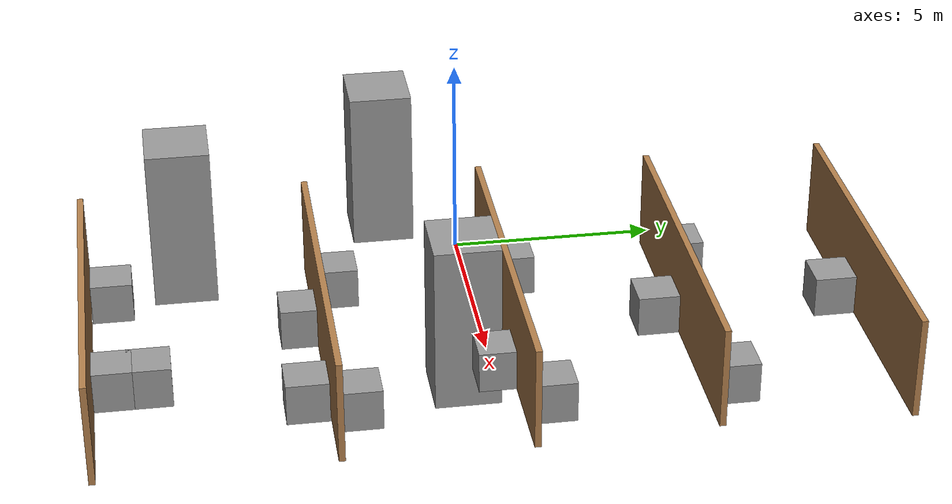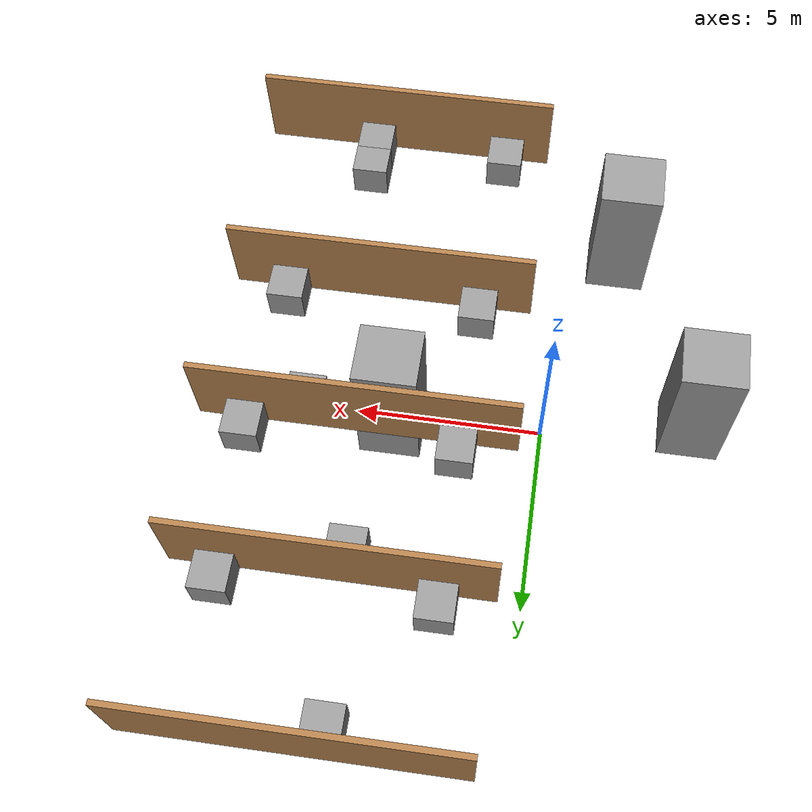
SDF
<sdf version="1.7">
 <world name="default">
  <light name="sun" type="directional">
   <pose>0 0 10 0 -0 0</pose>
   <diffuse>0.8 0.8 0.8 1</diffuse>
   <specular>0.2 0.2 0.2 1</specular>
   <attenuation>
    <range>1000</range>
    <constant>0.9</constant>
    <linear>0.01</linear>
    <quadratic>0.001</quadratic>
   </attenuation>
   <direction>-0.5 0.1 -0.9</direction>
   <spot><inner_angle>0</inner_angle><outer_angle>0</outer_angle><falloff>0</falloff></spot>
  </light>
  <gravity>0 0 -9.8</gravity>
  <magnetic_field>6e-06 2.3e-05 -4.2e-05</magnetic_field>
  <atmosphere type="adiabatic"/>
  <physics type="ode">
   <max_step_size>0.001</max_step_size>
   <real_time_factor>1</real_time_factor>
   <real_time_update_rate>1000</real_time_update_rate>
  </physics>
  <scene><ambient>0.4 0.4 0.4 1</ambient><background>0.7 0.7 0.7 1</background><shadows>1</shadows></scene>
  <audio><device>default</device></audio>
  <spherical_coordinates>
   <surface_model>EARTH_WGS84</surface_model>
   <latitude_deg>0</latitude_deg>
   <longitude_deg>0</longitude_deg>
   <elevation>0</elevation>
   <heading_deg>0</heading_deg>
  </spherical_coordinates>
  <model name="Untitled">
   <pose>4.68603 -0.061154 0 0 -0 0</pose>
   <link name="Wall_11">
    <collision name="Wall_11_Collision">
     <geometry><box><size>8.5 0.15 2.5</size></box></geometry>
     <pose>0 0 1.25 0 -0 0</pose>
    </collision>
    <visual name="Wall_11_Visual">
     <pose>0 0 1.25 0 -0 0</pose>
     <geometry><box><size>8.5 0.15 2.5</size></box></geometry>
     <material>
      <script><uri>file://media/materials/scripts/gazebo.material</uri><name>Gazebo/Wood</name></script>
      <ambient>1 1 1 1</ambient>
     </material>
     <meta><layer>0</layer></meta>
    </visual>
    <pose>0.278761 -9.24202 0 0 -0 0</pose>
   </link>
   <link name="Wall_2">
    <collision name="Wall_2_Collision">
     <geometry><box><size>8.75 0.15 2.5</size></box></geometry>
     <pose>0 0 1.25 0 -0 0</pose>
    </collision>
    <visual name="Wall_2_Visual">
     <pose>0 0 1.25 0 -0 0</pose>
     <geometry><box><size>8.75 0.15 2.5</size></box></geometry>
     <material>
      <script><uri>file://media/materials/scripts/gazebo.material</uri><name>Gazebo/Wood</name></script>
      <ambient>1 1 1 1</ambient>
     </material>
     <meta><layer>0</layer></meta>
    </visual>
    <pose>0.311029 9.24202 0 0 -0 0</pose>
   </link>
   <link name="Wall_5">
    <collision name="Wall_5_Collision">
     <geometry><box><size>8.5 0.15 2.5</size></box></geometry>
     <pose>0 0 1.25 0 -0 0</pose>
    </collision>
    <visual name="Wall_5_Visual">
     <pose>0 0 1.25 0 -0 0</pose>
     <geometry><box><size>8.5 0.15 2.5</size></box></geometry>
     <material>
      <script><uri>file://media/materials/scripts/gazebo.material</uri><name>Gazebo/Wood</name></script>
      <ambient>1 1 1 1</ambient>
     </material>
     <meta><layer>0</layer></meta>
    </visual>
    <pose>0.165164 4.82682 0 0 -0 3.14159</pose>
   </link>
   <link name="Wall_7">
    <collision name="Wall_7_Collision">
     <geometry><box><size>8.75 0.15 2.5</size></box></geometry>
     <pose>0 0 1.25 0 -0 0</pose>
    </collision>
    <visual name="Wall_7_Visual">
     <pose>0 0 1.25 0 -0 0</pose>
     <geometry><box><size>8.75 0.15 2.5</size></box></geometry>
     <material>
      <script><uri>file://media/materials/scripts/gazebo.material</uri><name>Gazebo/Wood</name></script>
      <ambient>1 1 1 1</ambient>
     </material>
     <meta><layer>0</layer></meta>
    </visual>
    <pose>0.226073 0.563848 0 0 -0 0</pose>
   </link>
   <link name="Wall_9">
    <collision name="Wall_9_Collision">
     <geometry><box><size>8.5 0.15 2.5</size></box></geometry>
     <pose>0 0 1.25 0 -0 0</pose>
    </collision>
    <visual name="Wall_9_Visual">
     <pose>0 0 1.25 0 -0 0</pose>
     <geometry><box><size>8.5 0.15 2.5</size></box></geometry>
     <material>
      <script><uri>file://media/materials/scripts/gazebo.material</uri><name>Gazebo/Wood</name></script>
      <ambient>1 1 1 1</ambient>
     </material>
     <meta><layer>0</layer></meta>
    </visual>
    <pose>0.225561 -3.78898 0 0 -0 0</pose>
   </link>
   <static>1</static>
  </model>
  <model name="unit_box">
   <pose>4.30977 8.60587 0.499993 0 6e-06 0</pose>
   <link name="link">
    <inertial>
     <mass>1</mass>
     <inertia>
      <ixx>0.166667</ixx>
      <ixy>0</ixy>
      <ixz>0</ixz>
      <iyy>0.166667</iyy>
      <iyz>0</iyz>
      <izz>0.166667</izz>
     </inertia>
    </inertial>
    <collision name="collision"><geometry><box><size>1 1 1</size></box></geometry></collision>
    <visual name="visual">
     <geometry><box><size>1 1 1</size></box></geometry>
     <material>
      <script><name>Gazebo/Grey</name><uri>file://media/materials/scripts/gazebo.material</uri></script>
     </material>
    </visual>
   </link>
  </model>
  <model name="unit_box_clone">
   <pose>2.08662 5.34068 0.499998 1e-06 -4e-06 0</pose>
   <link name="link">
    <inertial>
     <mass>1</mass>
     <inertia>
      <ixx>0.166667</ixx>
      <ixy>0</ixy>
      <ixz>0</ixz>
      <iyy>0.166667</iyy>
      <iyz>0</iyz>
      <izz>0.166667</izz>
     </inertia>
    </inertial>
    <collision name="collision"><geometry><box><size>1 1 1</size></box></geometry></collision>
    <visual name="visual">
     <geometry><box><size>1 1 1</size></box></geometry>
     <material>
      <script><name>Gazebo/Grey</name><uri>file://media/materials/scripts/gazebo.material</uri></script>
     </material>
    </visual>
   </link>
  </model>
  <model name="unit_box_0">
   <pose>7.74378 5.34065 0.499995 9e-06 -0 -1e-06</pose>
   <link name="link">
    <inertial>
     <mass>1</mass>
     <inertia>
      <ixx>0.166667</ixx>
      <ixy>0</ixy>
      <ixz>0</ixz>
      <iyy>0.166667</iyy>
      <iyz>0</iyz>
      <izz>0.166667</izz>
     </inertia>
    </inertial>
    <collision name="collision"><geometry><box><size>1 1 1</size></box></geometry></collision>
    <visual name="visual">
     <geometry><box><size>1 1 1</size></box></geometry>
     <material>
      <script><name>Gazebo/Grey</name><uri>file://media/materials/scripts/gazebo.material</uri></script>
     </material>
    </visual>
   </link>
  </model>
  <model name="unit_box_1">
   <pose>2.15984 1.0777 0.499996 -8e-06 0 0</pose>
   <link name="link">
    <inertial>
     <mass>1</mass>
     <inertia>
      <ixx>0.166667</ixx>
      <ixy>0</ixy>
      <ixz>0</ixz>
      <iyy>0.166667</iyy>
      <iyz>0</iyz>
      <izz>0.166667</izz>
     </inertia>
    </inertial>
    <collision name="collision"><geometry><box><size>1 1 1</size></box></geometry></collision>
    <visual name="visual">
     <geometry><box><size>1 1 1</size></box></geometry>
     <material>
      <script><name>Gazebo/Grey</name><uri>file://media/materials/scripts/gazebo.material</uri></script>
     </material>
    </visual>
   </link>
  </model>
  <model name="unit_box_2">
   <pose>4.53074 4.19067 0.499999 -2e-06 -0 -7e-06</pose>
   <link name="link">
    <inertial>
     <mass>1</mass>
     <inertia>
      <ixx>0.166667</ixx>
      <ixy>0</ixy>
      <ixz>0</ixz>
      <iyy>0.166667</iyy>
      <iyz>0</iyz>
      <izz>0.166667</izz>
     </inertia>
    </inertial>
    <collision name="collision"><geometry><box><size>1 1 1</size></box></geometry></collision>
    <visual name="visual">
     <geometry><box><size>1 1 1</size></box></geometry>
     <material>
      <script><name>Gazebo/Grey</name><uri>file://media/materials/scripts/gazebo.material</uri></script>
     </material>
    </visual>
   </link>
  </model>
  <model name="unit_box_3">
   <pose>7.88575 1.0777 0.499993 0 6e-06 0</pose>
   <link name="link">
    <inertial>
     <mass>1</mass>
     <inertia>
      <ixx>0.166667</ixx>
      <ixy>0</ixy>
      <ixz>0</ixz>
      <iyy>0.166667</iyy>
      <iyz>0</iyz>
      <izz>0.166667</izz>
     </inertia>
    </inertial>
    <collision name="collision"><geometry><box><size>1 1 1</size></box></geometry></collision>
    <visual name="visual">
     <geometry><box><size>1 1 1</size></box></geometry>
     <material>
      <script><name>Gazebo/Grey</name><uri>file://media/materials/scripts/gazebo.material</uri></script>
     </material>
    </visual>
   </link>
  </model>
  <model name="unit_box_4">
   <pose>2.12919 -3.27513 0.499995 -1e-05 0 0</pose>
   <link name="link">
    <inertial>
     <mass>1</mass>
     <inertia>
      <ixx>0.166667</ixx>
      <ixy>0</ixy>
      <ixz>0</ixz>
      <iyy>0.166667</iyy>
      <iyz>0</iyz>
      <izz>0.166667</izz>
     </inertia>
    </inertial>
    <collision name="collision"><geometry><box><size>1 1 1</size></box></geometry></collision>
    <visual name="visual">
     <geometry><box><size>1 1 1</size></box></geometry>
     <material>
      <script><name>Gazebo/Grey</name><uri>file://media/materials/scripts/gazebo.material</uri></script>
     </material>
    </visual>
   </link>
  </model>
  <model name="unit_box_5">
   <link name="link">
    <inertial>
     <mass>11.6417</mass>
     <inertia><ixx>19.9013</ixx><ixy>0</ixy><ixz>0</ixz><iyy>20.1756</iyy><iyz>0</iyz><izz>5.34613</izz></inertia>
    </inertial>
    <pose>-0.489188 -0.297788 -3e-06 0 -0 0</pose>
    <visual name="visual">
     <geometry><box><size>1.70196 1.61679 4.23082</size></box></geometry>
     <material>
      <script><name>Gazebo/Grey</name><uri>file://media/materials/scripts/gazebo.material</uri></script>
      <shader type="pixel"/>
     </material>
    </visual>
    <collision name="collision">
     <geometry><box><size>1.70196 1.61679 4.23082</size></box></geometry>
     <surface>
      <friction>
       <ode><mu>1</mu><mu2>1</mu2><fdir1>0 0 0</fdir1><slip1>0</slip1><slip2>0</slip2></ode>
       <torsional>
        <coefficient>1</coefficient>
        <patch_radius>0</patch_radius>
        <surface_radius>0</surface_radius>
        <use_patch_radius>1</use_patch_radius>
        <ode><slip>0</slip></ode>
       </torsional>
      </friction>
      <bounce><restitution_coefficient>0</restitution_coefficient><threshold>1e+06</threshold></bounce>
      <contact>
       <collide_without_contact>0</collide_without_contact>
       <collide_without_contact_bitmask>1</collide_without_contact_bitmask>
       <collide_bitmask>1</collide_bitmask>
       <ode>
        <soft_cfm>0</soft_cfm>
        <soft_erp>0.2</soft_erp>
        <kp>1e+13</kp>
        <kd>1</kd>
        <max_vel>0.01</max_vel>
        <min_depth>0</min_depth>
       </ode>
       <bullet>
        <split_impulse>1</split_impulse>
        <split_impulse_penetration_threshold>-0.01</split_impulse_penetration_threshold>
        <soft_cfm>0</soft_cfm>
        <soft_erp>0.2</soft_erp>
        <kp>1e+13</kp>
        <kd>1</kd>
       </bullet>
      </contact>
     </surface>
    </collision>
   </link>
   <static>0</static>
   <pose>4.62839 -0.114764 0.499995 -1e-05 -0 -2e-06</pose>
  </model>
  <model name="unit_box_5_clone">
   <link name="link">
    <inertial>
     <mass>11.6417</mass>
     <inertia><ixx>19.9013</ixx><ixy>0</ixy><ixz>0</ixz><iyy>20.1756</iyy><iyz>0</iyz><izz>5.34613</izz></inertia>
    </inertial>
    <pose>-0.489188 -0.297788 -3e-06 0 -0 0</pose>
    <visual name="visual">
     <geometry><box><size>1.70196 1.61679 4.23082</size></box></geometry>
     <material>
      <script><name>Gazebo/Grey</name><uri>file://media/materials/scripts/gazebo.material</uri></script>
      <shader type="pixel"/>
     </material>
    </visual>
    <collision name="collision">
     <geometry><box><size>1.70196 1.61679 4.23082</size></box></geometry>
     <surface>
      <friction>
       <ode><mu>1</mu><mu2>1</mu2><fdir1>0 0 0</fdir1><slip1>0</slip1><slip2>0</slip2></ode>
       <torsional>
        <coefficient>1</coefficient>
        <patch_radius>0</patch_radius>
        <surface_radius>0</surface_radius>
        <use_patch_radius>1</use_patch_radius>
        <ode><slip>0</slip></ode>
       </torsional>
      </friction>
      <bounce><restitution_coefficient>0</restitution_coefficient><threshold>1e+06</threshold></bounce>
      <contact>
       <collide_without_contact>0</collide_without_contact>
       <collide_without_contact_bitmask>1</collide_without_contact_bitmask>
       <collide_bitmask>1</collide_bitmask>
       <ode>
        <soft_cfm>0</soft_cfm>
        <soft_erp>0.2</soft_erp>
        <kp>1e+13</kp>
        <kd>1</kd>
        <max_vel>0.01</max_vel>
        <min_depth>0</min_depth>
       </ode>
       <bullet>
        <split_impulse>1</split_impulse>
        <split_impulse_penetration_threshold>-0.01</split_impulse_penetration_threshold>
        <soft_cfm>0</soft_cfm>
        <soft_erp>0.2</soft_erp>
        <kp>1e+13</kp>
        <kd>1</kd>
       </bullet>
      </contact>
     </surface>
    </collision>
   </link>
   <static>0</static>
   <pose>-3.70347 -1.18622 0.499995 -1e-05 -0 -2e-06</pose>
  </model>
  <model name="unit_box_5_clone_0">
   <link name="link">
    <inertial>
     <mass>11.6417</mass>
     <inertia><ixx>19.9013</ixx><ixy>0</ixy><ixz>0</ixz><iyy>20.1756</iyy><iyz>0</iyz><izz>5.34613</izz></inertia>
    </inertial>
    <pose>-0.489188 -0.297788 -3e-06 0 -0 0</pose>
    <visual name="visual">
     <geometry><box><size>1.70196 1.61679 4.23082</size></box></geometry>
     <material>
      <script><name>Gazebo/Grey</name><uri>file://media/materials/scripts/gazebo.material</uri></script>
      <shader type="pixel"/>
     </material>
    </visual>
    <collision name="collision">
     <geometry><box><size>1.70196 1.61679 4.23082</size></box></geometry>
     <surface>
      <friction>
       <ode><mu>1</mu><mu2>1</mu2><fdir1>0 0 0</fdir1><slip1>0</slip1><slip2>0</slip2></ode>
       <torsional>
        <coefficient>1</coefficient>
        <patch_radius>0</patch_radius>
        <surface_radius>0</surface_radius>
        <use_patch_radius>1</use_patch_radius>
        <ode><slip>0</slip></ode>
       </torsional>
      </friction>
      <bounce><restitution_coefficient>0</restitution_coefficient><threshold>1e+06</threshold></bounce>
      <contact>
       <collide_without_contact>0</collide_without_contact>
       <collide_without_contact_bitmask>1</collide_without_contact_bitmask>
       <collide_bitmask>1</collide_bitmask>
       <ode>
        <soft_cfm>0</soft_cfm>
        <soft_erp>0.2</soft_erp>
        <kp>1e+13</kp>
        <kd>1</kd>
        <max_vel>0.01</max_vel>
        <min_depth>0</min_depth>
       </ode>
       <bullet>
        <split_impulse>1</split_impulse>
        <split_impulse_penetration_threshold>-0.01</split_impulse_penetration_threshold>
        <soft_cfm>0</soft_cfm>
        <soft_erp>0.2</soft_erp>
        <kp>1e+13</kp>
        <kd>1</kd>
       </bullet>
      </contact>
     </surface>
    </collision>
   </link>
   <static>0</static>
   <pose>-1.25816 -6.59624 0.499995 -1e-05 -0 -2e-06</pose>
  </model>
  <model name="unit_box_6">
   <pose>1.97458 -8.70606 0.5 0 -0 0</pose>
   <link name="link">
    <inertial>
     <mass>1</mass>
     <inertia>
      <ixx>0.166667</ixx>
      <ixy>0</ixy>
      <ixz>0</ixz>
      <iyy>0.166667</iyy>
      <iyz>0</iyz>
      <izz>0.166667</izz>
     </inertia>
    </inertial>
    <collision name="collision"><geometry><box><size>1 1 1</size></box></geometry></collision>
    <visual name="visual">
     <geometry><box><size>1 1 1</size></box></geometry>
     <material>
      <script><name>Gazebo/Grey</name><uri>file://media/materials/scripts/gazebo.material</uri></script>
     </material>
    </visual>
   </link>
  </model>
  <model name="unit_box_7">
   <pose>3.83559 -4.29155 0.5 0 -0 0</pose>
   <link name="link">
    <inertial>
     <mass>1</mass>
     <inertia>
      <ixx>0.166667</ixx>
      <ixy>0</ixy>
      <ixz>0</ixz>
      <iyy>0.166667</iyy>
      <iyz>0</iyz>
      <izz>0.166667</izz>
     </inertia>
    </inertial>
    <collision name="collision"><geometry><box><size>1 1 1</size></box></geometry></collision>
    <visual name="visual">
     <geometry><box><size>1 1 1</size></box></geometry>
     <material>
      <script><name>Gazebo/Grey</name><uri>file://media/materials/scripts/gazebo.material</uri></script>
     </material>
    </visual>
   </link>
  </model>
  <model name="unit_box_8">
   <pose>7.52466 -3.28704 0.5 0 -0 0</pose>
   <link name="link">
    <inertial>
     <mass>1</mass>
     <inertia>
      <ixx>0.166667</ixx>
      <ixy>0</ixy>
      <ixz>0</ixz>
      <iyy>0.166667</iyy>
      <iyz>0</iyz>
      <izz>0.166667</izz>
     </inertia>
    </inertial>
    <collision name="collision"><geometry><box><size>1 1 1</size></box></geometry></collision>
    <visual name="visual">
     <geometry><box><size>1 1 1</size></box></geometry>
     <material>
      <script><name>Gazebo/Grey</name><uri>file://media/materials/scripts/gazebo.material</uri></script>
     </material>
    </visual>
   </link>
  </model>
  <model name="unit_box_9">
   <pose>6.37939 0.048888 0.5 0 -0 0</pose>
   <link name="link">
    <inertial>
     <mass>1</mass>
     <inertia>
      <ixx>0.166667</ixx>
      <ixy>0</ixy>
      <ixz>0</ixz>
      <iyy>0.166667</iyy>
      <iyz>0</iyz>
      <izz>0.166667</izz>
     </inertia>
    </inertial>
    <collision name="collision"><geometry><box><size>1 1 1</size></box></geometry></collision>
    <visual name="visual">
     <geometry><box><size>1 1 1</size></box></geometry>
     <material>
      <script><name>Gazebo/Grey</name><uri>file://media/materials/scripts/gazebo.material</uri></script>
     </material>
    </visual>
   </link>
  </model>
  <model name="unit_box_10">
   <pose>5.88572 -8.80311 0.5 0 -0 0</pose>
   <link name="link">
    <inertial>
     <mass>1</mass>
     <inertia>
      <ixx>0.166667</ixx>
      <ixy>0</ixy>
      <ixz>0</ixz>
      <iyy>0.166667</iyy>
      <iyz>0</iyz>
      <izz>0.166667</izz>
     </inertia>
    </inertial>
    <collision name="collision"><geometry><box><size>1 1 1</size></box></geometry></collision>
    <visual name="visual">
     <geometry><box><size>1 1 1</size></box></geometry>
     <material>
      <script><name>Gazebo/Grey</name><uri>file://media/materials/scripts/gazebo.material</uri></script>
     </material>
    </visual>
   </link>
  </model>
  <model name="unit_box_11">
   <pose>7.04706 -4.43993 0.5 0 -0 0</pose>
   <link name="link">
    <inertial>
     <mass>1</mass>
     <inertia>
      <ixx>0.166667</ixx>
      <ixy>0</ixy>
      <ixz>0</ixz>
      <iyy>0.166667</iyy>
      <iyz>0</iyz>
      <izz>0.166667</izz>
     </inertia>
    </inertial>
    <collision name="collision"><geometry><box><size>1 1 1</size></box></geometry></collision>
    <visual name="visual">
     <geometry><box><size>1 1 1</size></box></geometry>
     <material>
      <script><name>Gazebo/Grey</name><uri>file://media/materials/scripts/gazebo.material</uri></script>
     </material>
    </visual>
   </link>
  </model>
  <model name="unit_box_12">
   <pose>5.88572 -7.92204 0.5 0 -0 0</pose>
   <link name="link">
    <inertial>
     <mass>1</mass>
     <inertia>
      <ixx>0.166667</ixx>
      <ixy>0</ixy>
      <ixz>0</ixz>
      <iyy>0.166667</iyy>
      <iyz>0</iyz>
      <izz>0.166667</izz>
     </inertia>
    </inertial>
    <collision name="collision"><geometry><box><size>1 1 1</size></box></geometry></collision>
    <visual name="visual">
     <geometry><box><size>1 1 1</size></box></geometry>
     <material>
      <script><name>Gazebo/Grey</name><uri>file://media/materials/scripts/gazebo.material</uri></script>
     </material>
    </visual>
   </link>
  </model>
  <light name="user_spot_light_0" type="spot">
   <pose>-4.37006 0.420174 1 0 -0 0</pose>
   <diffuse>0.5 0.5 0.5 1</diffuse>
   <specular>0.1 0.1 0.1 1</specular>
   <direction>0 0 -1</direction>
   <attenuation>
    <range>20</range>
    <constant>0.5</constant>
    <linear>0.01</linear>
    <quadratic>0.001</quadratic>
   </attenuation>
   <cast_shadows>0</cast_shadows>
   <spot><inner_angle>0.6</inner_angle><outer_angle>1</outer_angle><falloff>1</falloff></spot>
  </light>
 </world>
</sdf>
